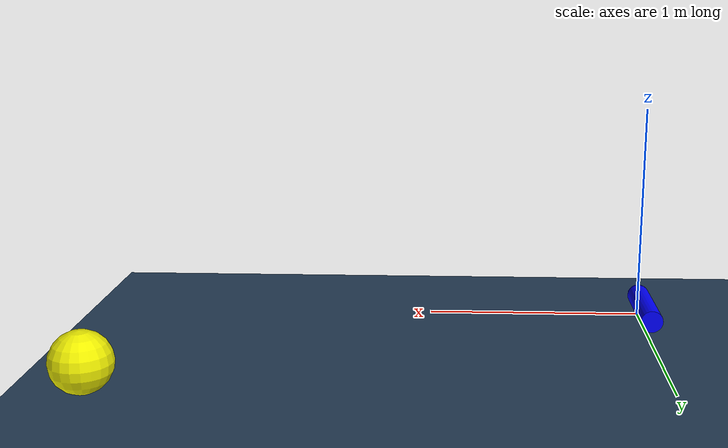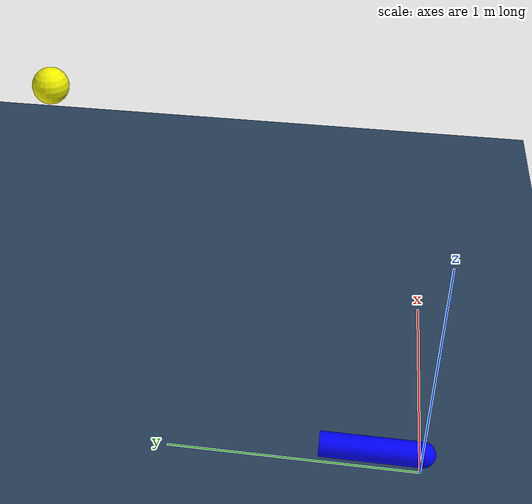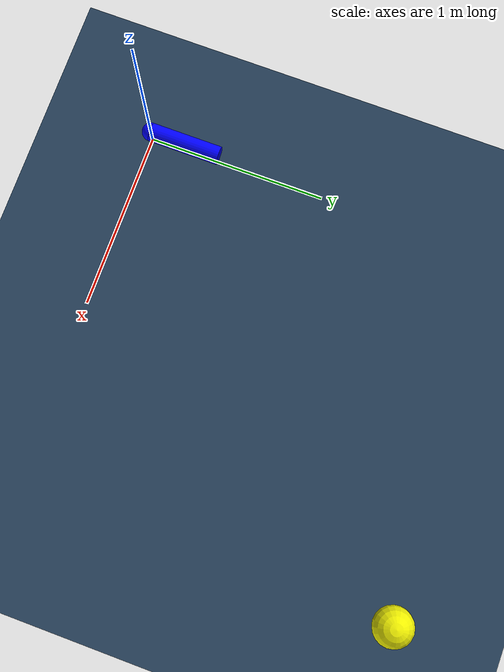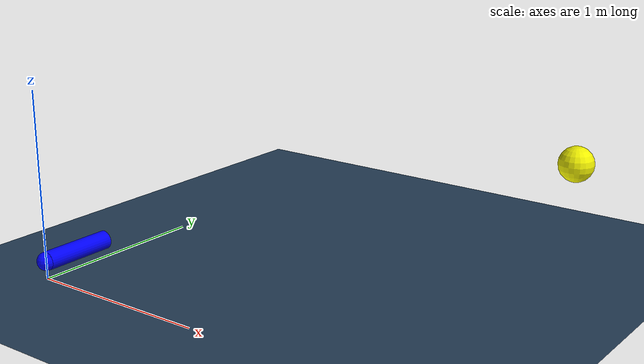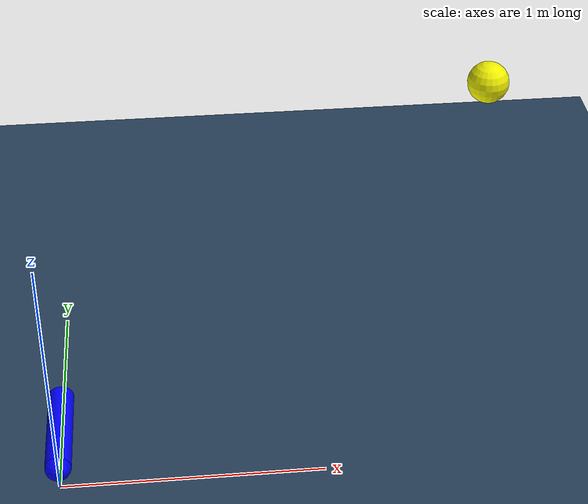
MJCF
<mujoco>

  <asset>
    <texture type="skybox" builtin="gradient" rgb1=".3 .5 .7" rgb2="0 0 0" width="512" height="512"/>
    <texture name="body" type="cube" builtin="flat" mark="cross" width="127" height="1278"
             rgb1="0.8 0.6 0.4" rgb2="0.8 0.6 0.4" markrgb="1 1 1" random="0.01"/>
    <material name="body" texture="body" texuniform="true" rgba="0.8 0.6 .4 1"/>
    <texture name="grid" type="2d" builtin="checker" width="512" height="512" rgb1=".1 .2 .3" rgb2=".2 .3 .4"/>
    <material name="grid" texture="grid" texrepeat="1 1" texuniform="true" reflectance=".2"/>
  </asset>

  <default>
    <motor ctrlrange="-3.14159265358979 3.14159265358979" ctrllimited="true"/>
    <default class="body">
      <geom type="capsule" condim="1" friction=".7" solimp=".9 .99 .003" solref=".015 1" material="body"/>
      <joint type="hinge" damping=".2" stiffness="1" armature=".01" limited="true" solimplimit="0 .99 .01"/>
      <default class="big_joint">
        <joint damping="5" stiffness="10"/>
        <default class="big_stiff_joint">
          <joint stiffness="100"/>
        </default>
      </default>
    </default>
  </default>

  <visual>
    <map force="0.1" zfar="30"/>
    <rgba haze="0.15 0.25 0.35 1"/>
    <quality shadowsize="4096"/>
    <global offwidth="800" offheight="800"/>
  </visual>

  <option gravity = "0 0 -9.81" />
    <worldbody>
      <light diffuse="0 0 0" pos="0 0 10" dir="0 0 -1"/>
      <geom name="floor" size="0 0 .05" type="plane" material="grid" condim="3"/>
      <body pos = "0 0 0.1" euler="0 0 0">
        <geom type="sphere" size="0.05 0.2" rgba="0 0 1 1" mass = "1"/>
        <joint type = "hinge" name = "joint0"/>
        <body pos = "0 0.2 0" euler="90 0 0">
          <geom type="cylinder" contype="1" mass = "1" size="0.05 0.2" rgba="0 0 1 1"/>
          <site name="center" size="0.001" pos="0 0 -0.2"/>
        </body>
		  </body>
      <body pos = "2 2 0.5">
			  <joint type="free"/>
        <site name="body" size="0.05" pos="0 0 0"/>
			  <geom type="sphere" size=".1 .1 .1" rgba="0.95 0.95 0 1" mass="1"/>
		  </body>
    </worldbody>
    <actuator>
      <motor name="torque" joint="joint0" gear="1" ctrllimited="true" ctrlrange="-100 100"/>
      <position name="position_servo" joint="joint0" kp="0"/>
      <velocity name="velocity_servo" joint="joint0" kv="10"/>
    </actuator>
    <sensor>
      <framepos objtype="site" objname="center"/>
      <framepos objtype="site" objname="body"/>
    </sensor>
</mujoco>
